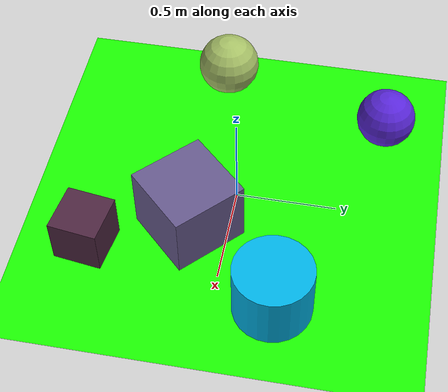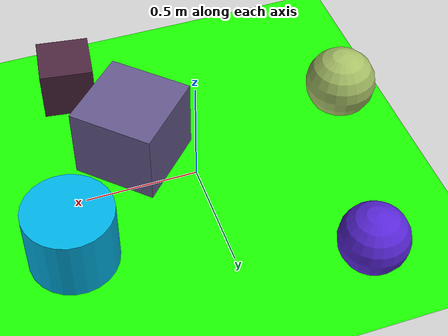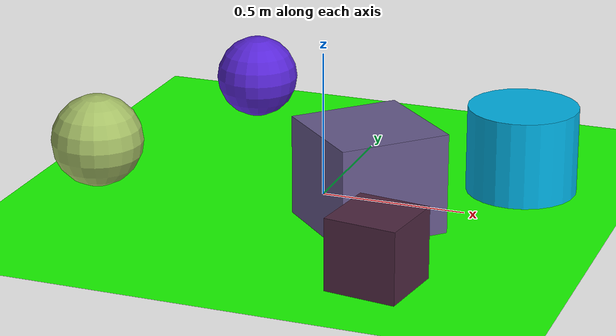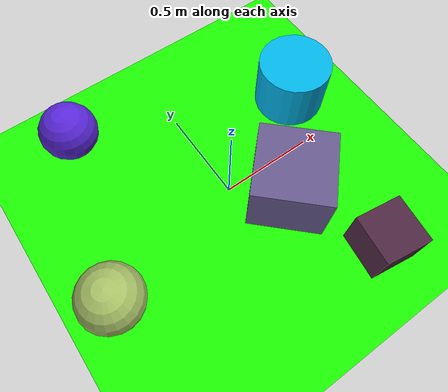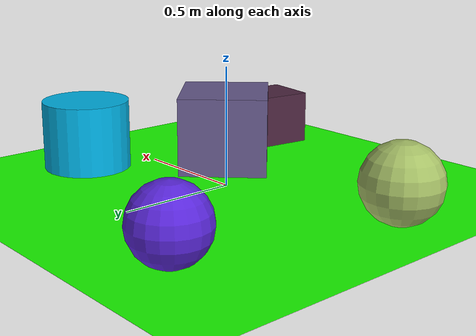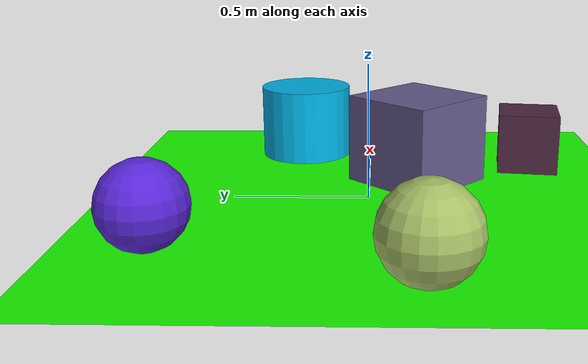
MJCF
<mujoco>
   <asset>
<texture type="skybox" builtin="gradient" rgb1="0.5 0.2 0.7" rgb2="1.0 0.7 0.2" width="256" height="256"/>
<texture name="gradient_0" builtin="gradient" rgb1="0.4 0.0 0.7" rgb2="0.4 0.7 0.4" width="200" height="200"/>
<texture name="checker_1" builtin="checker" rgb1="0.3 0.3 0.5" rgb2="0.3 0.0 0.0" width="200" height="200"/>
<texture name="gradient_2" builtin="gradient" rgb1="0.4 0.5 0.5" rgb2="0.9 1.0 0.3" width="200" height="200"/>
<texture name="flat_3" builtin="flat" rgb1="0.0 0.7 0.9" rgb2="0.0 0.7 0.9"  width="200" height="200"/>
<texture name="checker_4" builtin="checker" rgb1="0.4 0.2 0.7" rgb2="0.3 0.1 1.0" width="200" height="200"/><material name="gradient_0_mat" reflectance="0" texture="gradient_0" texuniform="true"/>
<material name="checker_1_mat" reflectance="0" texrepeat="9 9" texture="checker_1" texuniform="false" />
<material name="gradient_2_mat" reflectance="0" texture="gradient_2" texuniform="true"/>
<material name="flat_3_mat" reflectance="0" texture="flat_3" texuniform="true"/>
<material name="checker_4_mat" reflectance="0" texrepeat="7 7" texture="checker_4" texuniform="false" />
   </asset>

   <worldbody>
      <light diffuse=".9 .9 .9" pos="0 0 3" dir="0 0 -1"/>
     <geom type="plane" size="1 1 0.1" rgba="0.1 1.0 0.0 1"/>
<geom type="box" pos="0.23 -0.19 0.17" size="0.19 0.19 0.17" material="gradient_0_mat" euler="0 0 46" />
<geom type="box" pos="0.42 -0.66 0.12" size="0.12 0.12 0.12" material="checker_1_mat" euler="0 0 82" />
<geom type="sphere" pos="-0.76 -0.18 0.16" size="0.16 0.16 0.16" material="gradient_2_mat" euler="0 0 4" />
<geom type="cylinder" pos="0.62 0.28 0.15" size="0.19 0.15 0.15" material="flat_3_mat" euler="0 0 63" />
<geom type="sphere" pos="-0.52 0.69 0.15" size="0.15 0.15 0.15" material="checker_4_mat" euler="0 0 23" /><camera euler="60 0 180" fovy="60" name="camera1" pos="-0.2 -1.5 1"></camera>   </worldbody>
</mujoco>
